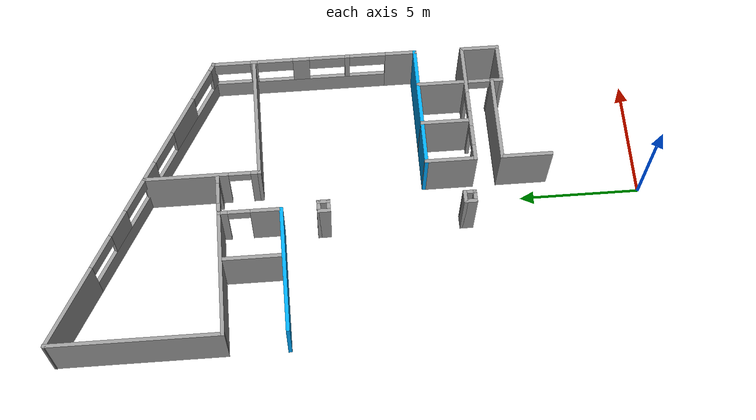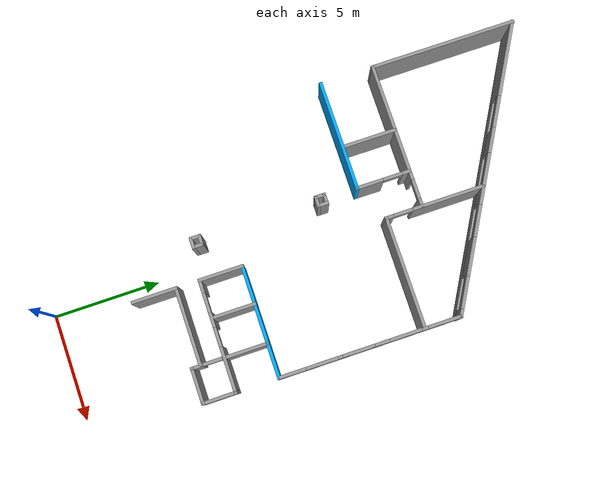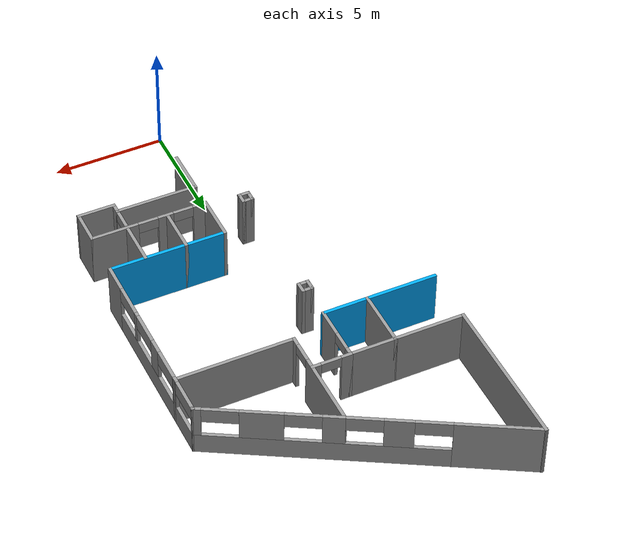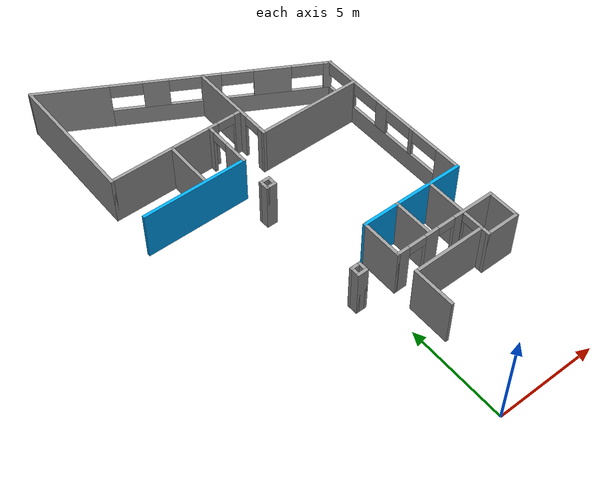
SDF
<sdf version="1.6">
 <model name="Building">
  <pose>0 4.66361 0 0 -0 0</pose>
  <link name="Wall_113">
   <collision name="Wall_113_Collision">
    <geometry><box><size>1.75 0.15 2.5</size></box></geometry>
    <pose>0 0 1.25 0 -0 0</pose>
   </collision>
   <visual name="Wall_113_Visual">
    <pose>0 0 1.25 0 -0 0</pose>
    <geometry><box><size>1.75 0.15 2.5</size></box></geometry>
    <material>
     <script><uri>file://media/materials/scripts/gazebo.material</uri><name>Gazebo/Grey</name></script>
     <ambient>1 1 1 1</ambient>
    </material>
    <meta><layer>0</layer></meta>
   </visual>
   <pose>5.2 0.836388 0 0 -0 3.14159</pose>
  </link>
  <link name="Wall_115">
   <pose>4.4 1.51139 0 0 -0 1.5708</pose>
   <visual name="Wall_115_Visual_0">
    <pose>-0.461821 0 1.25 0 -0 0</pose>
    <geometry><box><size>0.576358 0.15 2.5</size></box></geometry>
    <material>
     <script><uri>file://media/materials/scripts/gazebo.material</uri><name>Gazebo/Grey</name></script>
     <ambient>1 1 1 1</ambient>
    </material>
    <meta><layer>0</layer></meta>
   </visual>
   <collision name="Wall_115_Collision_0">
    <geometry><box><size>0.576358 0.15 2.5</size></box></geometry>
    <pose>-0.461821 0 1.25 0 -0 0</pose>
   </collision>
   <visual name="Wall_115_Visual_1">
    <pose>0.738179 0 1.25 0 -0 0</pose>
    <geometry><box><size>0.023642 0.15 2.5</size></box></geometry>
    <material>
     <script><uri>file://media/materials/scripts/gazebo.material</uri><name>Gazebo/Grey</name></script>
     <ambient>1 1 1 1</ambient>
    </material>
    <meta><layer>0</layer></meta>
   </visual>
   <collision name="Wall_115_Collision_1">
    <geometry><box><size>0.023642 0.15 2.5</size></box></geometry>
    <pose>0.738179 0 1.25 0 -0 0</pose>
   </collision>
   <visual name="Wall_115_Visual_2">
    <pose>0.276358 0 2.25 0 -0 0</pose>
    <geometry><box><size>0.9 0.15 0.5</size></box></geometry>
    <material>
     <script><uri>file://media/materials/scripts/gazebo.material</uri><name>Gazebo/Grey</name></script>
     <ambient>1 1 1 1</ambient>
    </material>
    <meta><layer>0</layer></meta>
   </visual>
   <collision name="Wall_115_Collision_2">
    <geometry><box><size>0.9 0.15 0.5</size></box></geometry>
    <pose>0.276358 0 2.25 0 -0 0</pose>
   </collision>
  </link>
  <link name="Wall_117">
   <collision name="Wall_117_Collision">
    <geometry><box><size>3.75 0.15 2.5</size></box></geometry>
    <pose>0 0 1.25 0 -0 0</pose>
   </collision>
   <visual name="Wall_117_Visual">
    <pose>0 0 1.25 0 -0 0</pose>
    <geometry><box><size>3.75 0.15 2.5</size></box></geometry>
    <material>
     <script><uri>file://media/materials/scripts/gazebo.material</uri><name>Gazebo/Grey</name></script>
     <ambient>1 1 1 1</ambient>
    </material>
    <meta><layer>0</layer></meta>
   </visual>
   <pose>2.6 1.23639 0 0 -0 0</pose>
  </link>
  <link name="Wall_12">
   <pose>0 16.2364 0 0 0 -0.515549</pose>
   <visual name="Wall_12_Visual_0">
    <pose>-5.14943 0 1.25 0 -0 0</pose>
    <geometry><box><size>3.6439 0.15 2.5</size></box></geometry>
    <material>
     <script><uri>file://media/materials/scripts/gazebo.material</uri><name>Gazebo/Grey</name></script>
     <ambient>1 1 1 1</ambient>
    </material>
    <meta><layer>0</layer></meta>
   </visual>
   <collision name="Wall_12_Collision_0">
    <geometry><box><size>3.6439 0.15 2.5</size></box></geometry>
    <pose>-5.14943 0 1.25 0 -0 0</pose>
   </collision>
   <visual name="Wall_12_Visual_1">
    <pose>1.82195 0 0.5 0 -0 0</pose>
    <geometry><box><size>10.2989 0.15 1</size></box></geometry>
    <material>
     <script><uri>file://media/materials/scripts/gazebo.material</uri><name>Gazebo/Grey</name></script>
     <ambient>1 1 1 1</ambient>
    </material>
    <meta><layer>0</layer></meta>
   </visual>
   <collision name="Wall_12_Collision_1">
    <geometry><box><size>10.2989 0.15 1</size></box></geometry>
    <pose>1.82195 0 0.5 0 -0 0</pose>
   </collision>
   <visual name="Wall_12_Visual_2">
    <pose>-1.22144 0 1.75 0 -0 0</pose>
    <geometry><box><size>1.21209 0.15 1.5</size></box></geometry>
    <material>
     <script><uri>file://media/materials/scripts/gazebo.material</uri><name>Gazebo/Grey</name></script>
     <ambient>1 1 1 1</ambient>
    </material>
    <meta><layer>0</layer></meta>
   </visual>
   <collision name="Wall_12_Collision_2">
    <geometry><box><size>1.21209 0.15 1.5</size></box></geometry>
    <pose>-1.22144 0 1.75 0 -0 0</pose>
   </collision>
   <visual name="Wall_12_Visual_3">
    <pose>1.33933 0 1.75 0 -0 0</pose>
    <geometry><box><size>0.909442 0.15 1.5</size></box></geometry>
    <material>
     <script><uri>file://media/materials/scripts/gazebo.material</uri><name>Gazebo/Grey</name></script>
     <ambient>1 1 1 1</ambient>
    </material>
    <meta><layer>0</layer></meta>
   </visual>
   <collision name="Wall_12_Collision_3">
    <geometry><box><size>0.909442 0.15 1.5</size></box></geometry>
    <pose>1.33933 0 1.75 0 -0 0</pose>
   </collision>
   <visual name="Wall_12_Visual_4">
    <pose>4.18293 0 1.75 0 -0 0</pose>
    <geometry><box><size>1.77777 0.15 1.5</size></box></geometry>
    <material>
     <script><uri>file://media/materials/scripts/gazebo.material</uri><name>Gazebo/Grey</name></script>
     <ambient>1 1 1 1</ambient>
    </material>
    <meta><layer>0</layer></meta>
   </visual>
   <collision name="Wall_12_Collision_4">
    <geometry><box><size>1.77777 0.15 1.5</size></box></geometry>
    <pose>4.18293 0 1.75 0 -0 0</pose>
   </collision>
   <visual name="Wall_12_Visual_5">
    <pose>6.7716 0 1.75 0 -0 0</pose>
    <geometry><box><size>0.399558 0.15 1.5</size></box></geometry>
    <material>
     <script><uri>file://media/materials/scripts/gazebo.material</uri><name>Gazebo/Grey</name></script>
     <ambient>1 1 1 1</ambient>
    </material>
    <meta><layer>0</layer></meta>
   </visual>
   <collision name="Wall_12_Collision_5">
    <geometry><box><size>0.399558 0.15 1.5</size></box></geometry>
    <pose>6.7716 0 1.75 0 -0 0</pose>
   </collision>
   <visual name="Wall_12_Visual_6">
    <pose>-2.57748 0 2.15 0 -0 0</pose>
    <geometry><box><size>1.5 0.15 0.7</size></box></geometry>
    <material>
     <script><uri>file://media/materials/scripts/gazebo.material</uri><name>Gazebo/Grey</name></script>
     <ambient>1 1 1 1</ambient>
    </material>
    <meta><layer>0</layer></meta>
   </visual>
   <collision name="Wall_12_Collision_6">
    <geometry><box><size>1.5 0.15 0.7</size></box></geometry>
    <pose>-2.57748 0 2.15 0 -0 0</pose>
   </collision>
   <visual name="Wall_12_Visual_7">
    <pose>0.134607 0 2.15 0 -0 0</pose>
    <geometry><box><size>1.5 0.15 0.7</size></box></geometry>
    <material>
     <script><uri>file://media/materials/scripts/gazebo.material</uri><name>Gazebo/Grey</name></script>
     <ambient>1 1 1 1</ambient>
    </material>
    <meta><layer>0</layer></meta>
   </visual>
   <collision name="Wall_12_Collision_7">
    <geometry><box><size>1.5 0.15 0.7</size></box></geometry>
    <pose>0.134607 0 2.15 0 -0 0</pose>
   </collision>
   <visual name="Wall_12_Visual_8">
    <pose>2.54405 0 2.15 0 -0 0</pose>
    <geometry><box><size>1.5 0.15 0.7</size></box></geometry>
    <material>
     <script><uri>file://media/materials/scripts/gazebo.material</uri><name>Gazebo/Grey</name></script>
     <ambient>1 1 1 1</ambient>
    </material>
    <meta><layer>0</layer></meta>
   </visual>
   <collision name="Wall_12_Collision_8">
    <geometry><box><size>1.5 0.15 0.7</size></box></geometry>
    <pose>2.54405 0 2.15 0 -0 0</pose>
   </collision>
   <visual name="Wall_12_Visual_9">
    <pose>5.82182 0 2.15 0 -0 0</pose>
    <geometry><box><size>1.5 0.15 0.7</size></box></geometry>
    <material>
     <script><uri>file://media/materials/scripts/gazebo.material</uri><name>Gazebo/Grey</name></script>
     <ambient>1 1 1 1</ambient>
    </material>
    <meta><layer>0</layer></meta>
   </visual>
   <collision name="Wall_12_Collision_9">
    <geometry><box><size>1.5 0.15 0.7</size></box></geometry>
    <pose>5.82182 0 2.15 0 -0 0</pose>
   </collision>
  </link>
  <link name="Wall_123">
   <collision name="Wall_123_Collision">
    <geometry><box><size>2 0.15 2.5</size></box></geometry>
    <pose>0 0 1.25 0 -0 0</pose>
   </collision>
   <visual name="Wall_123_Visual">
    <pose>0 0 1.25 0 -0 0</pose>
    <geometry><box><size>2 0.15 2.5</size></box></geometry>
    <material>
     <script><uri>file://media/materials/scripts/gazebo.material</uri><name>Gazebo/Grey</name></script>
     <ambient>1 1 1 1</ambient>
    </material>
    <meta><layer>0</layer></meta>
   </visual>
   <pose>4.40848 3.39488 0 0 -0 1.5708</pose>
  </link>
  <link name="Wall_126">
   <collision name="Wall_126_Collision">
    <geometry><box><size>2 0.15 2.5</size></box></geometry>
    <pose>0 0 1.25 0 -0 0</pose>
   </collision>
   <visual name="Wall_126_Visual">
    <pose>0 0 1.25 0 -0 0</pose>
    <geometry><box><size>2 0.15 2.5</size></box></geometry>
    <material>
     <script><uri>file://media/materials/scripts/gazebo.material</uri><name>Gazebo/Grey</name></script>
     <ambient>1 1 1 1</ambient>
    </material>
    <meta><layer>0</layer></meta>
   </visual>
   <pose>2.573 3.41139 0 0 0 -1.5708</pose>
  </link>
  <link name="Wall_18">
   <collision name="Wall_18_Collision">
    <geometry><box><size>2.15 0.15 2.5</size></box></geometry>
    <pose>0 0 1.25 0 -0 0</pose>
   </collision>
   <visual name="Wall_18_Visual">
    <pose>0 0 1.25 0 -0 0</pose>
    <geometry><box><size>2.15 0.15 2.5</size></box></geometry>
    <material>
     <script><uri>file://media/materials/scripts/gazebo.material</uri><name>Gazebo/Grey</name></script>
     <ambient>1 1 1 1</ambient>
    </material>
    <meta><layer>0</layer></meta>
   </visual>
   <pose>0.8 0.236388 0 0 -0 1.5708</pose>
  </link>
  <link name="Wall_20">
   <collision name="Wall_20_Collision">
    <geometry><box><size>5.35 0.15 2.5</size></box></geometry>
    <pose>0 0 1.25 0 -0 0</pose>
   </collision>
   <visual name="Wall_20_Visual">
    <pose>0 0 1.25 0 -0 0</pose>
    <geometry><box><size>5.35 0.15 2.5</size></box></geometry>
    <material>
     <script><uri>file://media/materials/scripts/gazebo.material</uri><name>Gazebo/Grey</name></script>
     <ambient>0 0.666667 1 1</ambient>
    </material>
    <meta><layer>0</layer></meta>
   </visual>
   <pose>3.4 4.33639 0 0 -0 0</pose>
  </link>
  <link name="Wall_22">
   <collision name="Wall_22_Collision">
    <geometry><box><size>2.15 0.15 2.5</size></box></geometry>
    <pose>0 0 1.25 0 -0 0</pose>
   </collision>
   <visual name="Wall_22_Visual">
    <pose>0 0 1.25 0 -0 0</pose>
    <geometry><box><size>2.15 0.15 2.5</size></box></geometry>
    <material>
     <script><uri>file://media/materials/scripts/gazebo.material</uri><name>Gazebo/Grey</name></script>
     <ambient>1 1 1 1</ambient>
    </material>
    <meta><layer>0</layer></meta>
   </visual>
   <pose>0.8 3.33639 0 0 0 -1.5708</pose>
  </link>
  <link name="Wall_24">
   <pose>3.4 2.33639 0 0 -0 0</pose>
   <visual name="Wall_24_Visual_0">
    <pose>-2.33821 0 1.25 0 -0 0</pose>
    <geometry><box><size>0.673574 0.15 2.5</size></box></geometry>
    <material>
     <script><uri>file://media/materials/scripts/gazebo.material</uri><name>Gazebo/Grey</name></script>
     <ambient>1 1 1 1</ambient>
    </material>
    <meta><layer>0</layer></meta>
   </visual>
   <collision name="Wall_24_Collision_0">
    <geometry><box><size>0.673574 0.15 2.5</size></box></geometry>
    <pose>-2.33821 0 1.25 0 -0 0</pose>
   </collision>
   <visual name="Wall_24_Visual_1">
    <pose>-0.749839 0 1.25 0 -0 0</pose>
    <geometry><box><size>0.703173 0.15 2.5</size></box></geometry>
    <material>
     <script><uri>file://media/materials/scripts/gazebo.material</uri><name>Gazebo/Grey</name></script>
     <ambient>1 1 1 1</ambient>
    </material>
    <meta><layer>0</layer></meta>
   </visual>
   <collision name="Wall_24_Collision_1">
    <geometry><box><size>0.703173 0.15 2.5</size></box></geometry>
    <pose>-0.749839 0 1.25 0 -0 0</pose>
   </collision>
   <visual name="Wall_24_Visual_2">
    <pose>1.58837 0 1.25 0 -0 0</pose>
    <geometry><box><size>2.17325 0.15 2.5</size></box></geometry>
    <material>
     <script><uri>file://media/materials/scripts/gazebo.material</uri><name>Gazebo/Grey</name></script>
     <ambient>1 1 1 1</ambient>
    </material>
    <meta><layer>0</layer></meta>
   </visual>
   <collision name="Wall_24_Collision_2">
    <geometry><box><size>2.17325 0.15 2.5</size></box></geometry>
    <pose>1.58837 0 1.25 0 -0 0</pose>
   </collision>
   <visual name="Wall_24_Visual_3">
    <pose>-1.55143 0 2.25 0 -0 0</pose>
    <geometry><box><size>0.9 0.15 0.5</size></box></geometry>
    <material>
     <script><uri>file://media/materials/scripts/gazebo.material</uri><name>Gazebo/Grey</name></script>
     <ambient>1 1 1 1</ambient>
    </material>
    <meta><layer>0</layer></meta>
   </visual>
   <collision name="Wall_24_Collision_3">
    <geometry><box><size>0.9 0.15 0.5</size></box></geometry>
    <pose>-1.55143 0 2.25 0 -0 0</pose>
   </collision>
   <visual name="Wall_24_Visual_4">
    <pose>0.051747 0 2.25 0 -0 0</pose>
    <geometry><box><size>0.9 0.15 0.5</size></box></geometry>
    <material>
     <script><uri>file://media/materials/scripts/gazebo.material</uri><name>Gazebo/Grey</name></script>
     <ambient>1 1 1 1</ambient>
    </material>
    <meta><layer>0</layer></meta>
   </visual>
   <collision name="Wall_24_Collision_4">
    <geometry><box><size>0.9 0.15 0.5</size></box></geometry>
    <pose>0.051747 0 2.25 0 -0 0</pose>
   </collision>
  </link>
  <link name="Wall_26">
   <collision name="Wall_26_Collision">
    <geometry><box><size>1.65 0.15 2.5</size></box></geometry>
    <pose>0 0 1.25 0 -0 0</pose>
   </collision>
   <visual name="Wall_26_Visual">
    <pose>0 0 1.25 0 -0 0</pose>
    <geometry><box><size>1.65 0.15 2.5</size></box></geometry>
    <material>
     <script><uri>file://media/materials/scripts/gazebo.material</uri><name>Gazebo/Grey</name></script>
     <ambient>1 1 1 1</ambient>
    </material>
    <meta><layer>0</layer></meta>
   </visual>
   <pose>6 1.58639 0 0 0 -1.5708</pose>
  </link>
  <link name="Wall_34">
   <pose>6 8.58639 0 0 -0 1.5708</pose>
   <visual name="Wall_34_Visual_0">
    <pose>-3.66132 0 1.25 0 -0 0</pose>
    <geometry><box><size>1.32735 0.15 2.5</size></box></geometry>
    <material>
     <script><uri>file://media/materials/scripts/gazebo.material</uri><name>Gazebo/Grey</name></script>
     <ambient>1 1 1 1</ambient>
    </material>
    <meta><layer>0</layer></meta>
   </visual>
   <collision name="Wall_34_Collision_0">
    <geometry><box><size>1.32735 0.15 2.5</size></box></geometry>
    <pose>-3.66132 0 1.25 0 -0 0</pose>
   </collision>
   <visual name="Wall_34_Visual_1">
    <pose>0.663676 0 0.5 0 -0 0</pose>
    <geometry><box><size>7.32265 0.15 1</size></box></geometry>
    <material>
     <script><uri>file://media/materials/scripts/gazebo.material</uri><name>Gazebo/Grey</name></script>
     <ambient>1 1 1 1</ambient>
    </material>
    <meta><layer>0</layer></meta>
   </visual>
   <collision name="Wall_34_Collision_1">
    <geometry><box><size>7.32265 0.15 1</size></box></geometry>
    <pose>0.663676 0 0.5 0 -0 0</pose>
   </collision>
   <visual name="Wall_34_Visual_2">
    <pose>-1.39381 0 1.75 0 -0 0</pose>
    <geometry><box><size>0.207676 0.15 1.5</size></box></geometry>
    <material>
     <script><uri>file://media/materials/scripts/gazebo.material</uri><name>Gazebo/Grey</name></script>
     <ambient>1 1 1 1</ambient>
    </material>
    <meta><layer>0</layer></meta>
   </visual>
   <collision name="Wall_34_Collision_2">
    <geometry><box><size>0.207676 0.15 1.5</size></box></geometry>
    <pose>-1.39381 0 1.75 0 -0 0</pose>
   </collision>
   <visual name="Wall_34_Visual_3">
    <pose>0.560271 0 1.75 0 -0 0</pose>
    <geometry><box><size>0.700485 0.15 1.5</size></box></geometry>
    <material>
     <script><uri>file://media/materials/scripts/gazebo.material</uri><name>Gazebo/Grey</name></script>
     <ambient>1 1 1 1</ambient>
    </material>
    <meta><layer>0</layer></meta>
   </visual>
   <collision name="Wall_34_Collision_3">
    <geometry><box><size>0.700485 0.15 1.5</size></box></geometry>
    <pose>0.560271 0 1.75 0 -0 0</pose>
   </collision>
   <visual name="Wall_34_Visual_4">
    <pose>2.56093 0 1.75 0 -0 0</pose>
    <geometry><box><size>0.300838 0.15 1.5</size></box></geometry>
    <material>
     <script><uri>file://media/materials/scripts/gazebo.material</uri><name>Gazebo/Grey</name></script>
     <ambient>1 1 1 1</ambient>
    </material>
    <meta><layer>0</layer></meta>
   </visual>
   <collision name="Wall_34_Collision_4">
    <geometry><box><size>0.300838 0.15 1.5</size></box></geometry>
    <pose>2.56093 0 1.75 0 -0 0</pose>
   </collision>
   <visual name="Wall_34_Visual_5">
    <pose>4.26818 0 1.75 0 -0 0</pose>
    <geometry><box><size>0.113649 0.15 1.5</size></box></geometry>
    <material>
     <script><uri>file://media/materials/scripts/gazebo.material</uri><name>Gazebo/Grey</name></script>
     <ambient>1 1 1 1</ambient>
    </material>
    <meta><layer>0</layer></meta>
   </visual>
   <collision name="Wall_34_Collision_5">
    <geometry><box><size>0.113649 0.15 1.5</size></box></geometry>
    <pose>4.26818 0 1.75 0 -0 0</pose>
   </collision>
   <visual name="Wall_34_Visual_6">
    <pose>-2.24765 0 2.15 0 -0 0</pose>
    <geometry><box><size>1.5 0.15 0.7</size></box></geometry>
    <material>
     <script><uri>file://media/materials/scripts/gazebo.material</uri><name>Gazebo/Grey</name></script>
     <ambient>1 1 1 1</ambient>
    </material>
    <meta><layer>0</layer></meta>
   </visual>
   <collision name="Wall_34_Collision_6">
    <geometry><box><size>1.5 0.15 0.7</size></box></geometry>
    <pose>-2.24765 0 2.15 0 -0 0</pose>
   </collision>
   <visual name="Wall_34_Visual_7">
    <pose>-0.539971 0 2.15 0 -0 0</pose>
    <geometry><box><size>1.5 0.15 0.7</size></box></geometry>
    <material>
     <script><uri>file://media/materials/scripts/gazebo.material</uri><name>Gazebo/Grey</name></script>
     <ambient>1 1 1 1</ambient>
    </material>
    <meta><layer>0</layer></meta>
   </visual>
   <collision name="Wall_34_Collision_7">
    <geometry><box><size>1.5 0.15 0.7</size></box></geometry>
    <pose>-0.539971 0 2.15 0 -0 0</pose>
   </collision>
   <visual name="Wall_34_Visual_8">
    <pose>1.66051 0 2.15 0 -0 0</pose>
    <geometry><box><size>1.5 0.15 0.7</size></box></geometry>
    <material>
     <script><uri>file://media/materials/scripts/gazebo.material</uri><name>Gazebo/Grey</name></script>
     <ambient>1 1 1 1</ambient>
    </material>
    <meta><layer>0</layer></meta>
   </visual>
   <collision name="Wall_34_Collision_8">
    <geometry><box><size>1.5 0.15 0.7</size></box></geometry>
    <pose>1.66051 0 2.15 0 -0 0</pose>
   </collision>
   <visual name="Wall_34_Visual_9">
    <pose>3.46135 0 2.15 0 -0 0</pose>
    <geometry><box><size>1.5 0.15 0.7</size></box></geometry>
    <material>
     <script><uri>file://media/materials/scripts/gazebo.material</uri><name>Gazebo/Grey</name></script>
     <ambient>1 1 1 1</ambient>
    </material>
    <meta><layer>0</layer></meta>
   </visual>
   <collision name="Wall_34_Collision_9">
    <geometry><box><size>1.5 0.15 0.7</size></box></geometry>
    <pose>3.46135 0 2.15 0 -0 0</pose>
   </collision>
  </link>
  <link name="Wall_36">
   <collision name="Wall_36_Collision">
    <geometry><box><size>5.35 0.15 2.5</size></box></geometry>
    <pose>0 0 1.25 0 -0 0</pose>
   </collision>
   <visual name="Wall_36_Visual">
    <pose>0 0 1.25 0 -0 0</pose>
    <geometry><box><size>5.35 0.15 2.5</size></box></geometry>
    <material>
     <script><uri>file://media/materials/scripts/gazebo.material</uri><name>Gazebo/Grey</name></script>
     <ambient>1 1 1 1</ambient>
    </material>
    <meta><layer>0</layer></meta>
   </visual>
   <pose>3.4 11.1364 0 0 -0 3.14159</pose>
  </link>
  <link name="Wall_38">
   <pose>0.8 13.4364 0 0 -0 1.5708</pose>
   <visual name="Wall_38_Visual_0">
    <pose>-2.16251 0 1.25 0 -0 0</pose>
    <geometry><box><size>0.424975 0.15 2.5</size></box></geometry>
    <material>
     <script><uri>file://media/materials/scripts/gazebo.material</uri><name>Gazebo/Grey</name></script>
     <ambient>1 1 1 1</ambient>
    </material>
    <meta><layer>0</layer></meta>
   </visual>
   <collision name="Wall_38_Collision_0">
    <geometry><box><size>0.424975 0.15 2.5</size></box></geometry>
    <pose>-2.16251 0 1.25 0 -0 0</pose>
   </collision>
   <visual name="Wall_38_Visual_1">
    <pose>0.662488 0 1.25 0 -0 0</pose>
    <geometry><box><size>3.42503 0.15 2.5</size></box></geometry>
    <material>
     <script><uri>file://media/materials/scripts/gazebo.material</uri><name>Gazebo/Grey</name></script>
     <ambient>1 1 1 1</ambient>
    </material>
    <meta><layer>0</layer></meta>
   </visual>
   <collision name="Wall_38_Collision_1">
    <geometry><box><size>3.42503 0.15 2.5</size></box></geometry>
    <pose>0.662488 0 1.25 0 -0 0</pose>
   </collision>
   <visual name="Wall_38_Visual_2">
    <pose>-1.50002 0 2.25 0 -0 0</pose>
    <geometry><box><size>0.9 0.15 0.5</size></box></geometry>
    <material>
     <script><uri>file://media/materials/scripts/gazebo.material</uri><name>Gazebo/Grey</name></script>
     <ambient>1 1 1 1</ambient>
    </material>
    <meta><layer>0</layer></meta>
   </visual>
   <collision name="Wall_38_Collision_2">
    <geometry><box><size>0.9 0.15 0.5</size></box></geometry>
    <pose>-1.50002 0 2.25 0 -0 0</pose>
   </collision>
  </link>
  <link name="Wall_40">
   <collision name="Wall_40_Collision">
    <geometry><box><size>6.95 0.15 2.5</size></box></geometry>
    <pose>0 0 1.25 0 -0 0</pose>
   </collision>
   <visual name="Wall_40_Visual">
    <pose>0 0 1.25 0 -0 0</pose>
    <geometry><box><size>6.95 0.15 2.5</size></box></geometry>
    <material>
     <script><uri>file://media/materials/scripts/gazebo.material</uri><name>Gazebo/Grey</name></script>
     <ambient>1 1 1 1</ambient>
    </material>
    <meta><layer>0</layer></meta>
   </visual>
   <pose>-6 16.2364 0 0 0 -1.5708</pose>
  </link>
  <link name="Wall_42">
   <collision name="Wall_42_Collision">
    <geometry><box><size>5.25 0.15 2.5</size></box></geometry>
    <pose>0 0 1.25 0 -0 0</pose>
   </collision>
   <visual name="Wall_42_Visual">
    <pose>0 0 1.25 0 -0 0</pose>
    <geometry><box><size>5.25 0.15 2.5</size></box></geometry>
    <material>
     <script><uri>file://media/materials/scripts/gazebo.material</uri><name>Gazebo/Grey</name></script>
     <ambient>1 1 1 1</ambient>
    </material>
    <meta><layer>0</layer></meta>
   </visual>
   <pose>-3.45 12.8364 0 0 -0 0</pose>
  </link>
  <link name="Wall_44">
   <pose>-0.05 12.8364 0 0 -0 0</pose>
   <visual name="Wall_44_Visual_0">
    <pose>-0.676746 0 1.25 0 -0 0</pose>
    <geometry><box><size>0.496509 0.15 2.5</size></box></geometry>
    <material>
     <script><uri>file://media/materials/scripts/gazebo.material</uri><name>Gazebo/Grey</name></script>
     <ambient>1 1 1 1</ambient>
    </material>
    <meta><layer>0</layer></meta>
   </visual>
   <collision name="Wall_44_Collision_0">
    <geometry><box><size>0.496509 0.15 2.5</size></box></geometry>
    <pose>-0.676746 0 1.25 0 -0 0</pose>
   </collision>
   <visual name="Wall_44_Visual_1">
    <pose>0.698254 0 1.25 0 -0 0</pose>
    <geometry><box><size>0.453491 0.15 2.5</size></box></geometry>
    <material>
     <script><uri>file://media/materials/scripts/gazebo.material</uri><name>Gazebo/Grey</name></script>
     <ambient>1 1 1 1</ambient>
    </material>
    <meta><layer>0</layer></meta>
   </visual>
   <collision name="Wall_44_Collision_1">
    <geometry><box><size>0.453491 0.15 2.5</size></box></geometry>
    <pose>0.698254 0 1.25 0 -0 0</pose>
   </collision>
   <visual name="Wall_44_Visual_2">
    <pose>0.021509 0 2.25 0 -0 0</pose>
    <geometry><box><size>0.9 0.15 0.5</size></box></geometry>
    <material>
     <script><uri>file://media/materials/scripts/gazebo.material</uri><name>Gazebo/Grey</name></script>
     <ambient>1 1 1 1</ambient>
    </material>
    <meta><layer>0</layer></meta>
   </visual>
   <collision name="Wall_44_Collision_2">
    <geometry><box><size>0.9 0.15 0.5</size></box></geometry>
    <pose>0.021509 0 2.25 0 -0 0</pose>
   </collision>
  </link>
  <link name="Wall_47">
   <pose>-0.9 11.5864 0 0 0 -1.5708</pose>
   <visual name="Wall_47_Visual_0">
    <pose>-1.10875 0 1.25 0 -0 0</pose>
    <geometry><box><size>0.432501 0.15 2.5</size></box></geometry>
    <material>
     <script><uri>file://media/materials/scripts/gazebo.material</uri><name>Gazebo/Grey</name></script>
     <ambient>1 1 1 1</ambient>
    </material>
    <meta><layer>0</layer></meta>
   </visual>
   <collision name="Wall_47_Collision_0">
    <geometry><box><size>0.432501 0.15 2.5</size></box></geometry>
    <pose>-1.10875 0 1.25 0 -0 0</pose>
   </collision>
   <visual name="Wall_47_Visual_1">
    <pose>0.66625 0 1.25 0 -0 0</pose>
    <geometry><box><size>1.3175 0.15 2.5</size></box></geometry>
    <material>
     <script><uri>file://media/materials/scripts/gazebo.material</uri><name>Gazebo/Grey</name></script>
     <ambient>1 1 1 1</ambient>
    </material>
    <meta><layer>0</layer></meta>
   </visual>
   <collision name="Wall_47_Collision_1">
    <geometry><box><size>1.3175 0.15 2.5</size></box></geometry>
    <pose>0.66625 0 1.25 0 -0 0</pose>
   </collision>
   <visual name="Wall_47_Visual_2">
    <pose>-0.442499 0 2.25 0 -0 0</pose>
    <geometry><box><size>0.9 0.15 0.5</size></box></geometry>
    <material>
     <script><uri>file://media/materials/scripts/gazebo.material</uri><name>Gazebo/Grey</name></script>
     <ambient>1 1 1 1</ambient>
    </material>
    <meta><layer>0</layer></meta>
   </visual>
   <collision name="Wall_47_Collision_2">
    <geometry><box><size>0.9 0.15 0.5</size></box></geometry>
    <pose>-0.442499 0 2.25 0 -0 0</pose>
   </collision>
  </link>
  <link name="Wall_49">
   <collision name="Wall_49_Collision">
    <geometry><box><size>5.25 0.15 2.5</size></box></geometry>
    <pose>0 0 1.25 0 -0 0</pose>
   </collision>
   <visual name="Wall_49_Visual">
    <pose>0 0 1.25 0 -0 0</pose>
    <geometry><box><size>5.25 0.15 2.5</size></box></geometry>
    <material>
     <script><uri>file://media/materials/scripts/gazebo.material</uri><name>Gazebo/Grey</name></script>
     <ambient>0 0.666667 1 1</ambient>
    </material>
    <meta><layer>0</layer></meta>
   </visual>
   <pose>-3.45 10.3364 0 0 -0 3.14159</pose>
  </link>
  <link name="Wall_61">
   <collision name="Wall_61_Collision">
    <geometry><box><size>2.65 0.15 2.5</size></box></geometry>
    <pose>0 0 1.25 0 -0 0</pose>
   </collision>
   <visual name="Wall_61_Visual">
    <pose>0 0 1.25 0 -0 0</pose>
    <geometry><box><size>2.65 0.15 2.5</size></box></geometry>
    <material>
     <script><uri>file://media/materials/scripts/gazebo.material</uri><name>Gazebo/Grey</name></script>
     <ambient>1 1 1 1</ambient>
    </material>
    <meta><layer>0</layer></meta>
   </visual>
   <pose>-2.9 11.5864 0 0 0 -1.5708</pose>
  </link>
  <link name="Wall_63">
   <collision name="Wall_63_Collision">
    <geometry><box><size>0.55 0.15 2.5</size></box></geometry>
    <pose>0 0 1.25 0 -0 0</pose>
   </collision>
   <visual name="Wall_63_Visual">
    <pose>0 0 1.25 0 -0 0</pose>
    <geometry><box><size>0.55 0.15 2.5</size></box></geometry>
    <material>
     <script><uri>file://media/materials/scripts/gazebo.material</uri><name>Gazebo/Grey</name></script>
     <ambient>1 1 1 1</ambient>
    </material>
    <meta><layer>0</layer></meta>
   </visual>
   <pose>-0.9 8.83639 0 0 -0 3.14159</pose>
  </link>
  <link name="Wall_65">
   <collision name="Wall_65_Collision">
    <geometry><box><size>0.55 0.15 2.5</size></box></geometry>
    <pose>0 0 1.25 0 -0 0</pose>
   </collision>
   <visual name="Wall_65_Visual">
    <pose>0 0 1.25 0 -0 0</pose>
    <geometry><box><size>0.55 0.15 2.5</size></box></geometry>
    <material>
     <script><uri>file://media/materials/scripts/gazebo.material</uri><name>Gazebo/Grey</name></script>
     <ambient>1 1 1 1</ambient>
    </material>
    <meta><layer>0</layer></meta>
   </visual>
   <pose>-1.1 8.63639 0 0 0 -1.5708</pose>
  </link>
  <link name="Wall_67">
   <collision name="Wall_67_Collision">
    <geometry><box><size>0.55 0.15 2.5</size></box></geometry>
    <pose>0 0 1.25 0 -0 0</pose>
   </collision>
   <visual name="Wall_67_Visual">
    <pose>0 0 1.25 0 -0 0</pose>
    <geometry><box><size>0.55 0.15 2.5</size></box></geometry>
    <material>
     <script><uri>file://media/materials/scripts/gazebo.material</uri><name>Gazebo/Grey</name></script>
     <ambient>1 1 1 1</ambient>
    </material>
    <meta><layer>0</layer></meta>
   </visual>
   <pose>-0.9 8.43639 0 0 -0 0</pose>
  </link>
  <link name="Wall_69">
   <collision name="Wall_69_Collision">
    <geometry><box><size>0.55 0.15 2.5</size></box></geometry>
    <pose>0 0 1.25 0 -0 0</pose>
   </collision>
   <visual name="Wall_69_Visual">
    <pose>0 0 1.25 0 -0 0</pose>
    <geometry><box><size>0.55 0.15 2.5</size></box></geometry>
    <material>
     <script><uri>file://media/materials/scripts/gazebo.material</uri><name>Gazebo/Grey</name></script>
     <ambient>1 1 1 1</ambient>
    </material>
    <meta><layer>0</layer></meta>
   </visual>
   <pose>-0.7 8.63639 0 0 0 -1.5708</pose>
  </link>
  <link name="Wall_71">
   <collision name="Wall_71_Collision">
    <geometry><box><size>0.55 0.15 2.5</size></box></geometry>
    <pose>0 0 1.25 0 -0 0</pose>
   </collision>
   <visual name="Wall_71_Visual">
    <pose>0 0 1.25 0 -0 0</pose>
    <geometry><box><size>0.55 0.15 2.5</size></box></geometry>
    <material>
     <script><uri>file://media/materials/scripts/gazebo.material</uri><name>Gazebo/Grey</name></script>
     <ambient>1 1 1 1</ambient>
    </material>
    <meta><layer>0</layer></meta>
   </visual>
   <pose>-0.9 2.53639 0 0 -0 0</pose>
  </link>
  <link name="Wall_73">
   <collision name="Wall_73_Collision">
    <geometry><box><size>0.55 0.15 2.5</size></box></geometry>
    <pose>0 0 1.25 0 -0 0</pose>
   </collision>
   <visual name="Wall_73_Visual">
    <pose>0 0 1.25 0 -0 0</pose>
    <geometry><box><size>0.55 0.15 2.5</size></box></geometry>
    <material>
     <script><uri>file://media/materials/scripts/gazebo.material</uri><name>Gazebo/Grey</name></script>
     <ambient>1 1 1 1</ambient>
    </material>
    <meta><layer>0</layer></meta>
   </visual>
   <pose>-0.9 2.93639 0 0 -0 0</pose>
  </link>
  <link name="Wall_75">
   <collision name="Wall_75_Collision">
    <geometry><box><size>0.55 0.15 2.5</size></box></geometry>
    <pose>0 0 1.25 0 -0 0</pose>
   </collision>
   <visual name="Wall_75_Visual">
    <pose>0 0 1.25 0 -0 0</pose>
    <geometry><box><size>0.55 0.15 2.5</size></box></geometry>
    <material>
     <script><uri>file://media/materials/scripts/gazebo.material</uri><name>Gazebo/Grey</name></script>
     <ambient>1 1 1 1</ambient>
    </material>
    <meta><layer>0</layer></meta>
   </visual>
   <pose>-1.1 2.73639 0 0 0 -1.5708</pose>
  </link>
  <link name="Wall_78">
   <collision name="Wall_78_Collision">
    <geometry><box><size>0.55 0.15 2.5</size></box></geometry>
    <pose>0 0 1.25 0 -0 0</pose>
   </collision>
   <visual name="Wall_78_Visual">
    <pose>0 0 1.25 0 -0 0</pose>
    <geometry><box><size>0.55 0.15 2.5</size></box></geometry>
    <material>
     <script><uri>file://media/materials/scripts/gazebo.material</uri><name>Gazebo/Grey</name></script>
     <ambient>1 1 1 1</ambient>
    </material>
    <meta><layer>0</layer></meta>
   </visual>
   <pose>-0.7 2.73639 0 0 0 -1.5708</pose>
  </link>
  <static>1</static>
 </model>
</sdf>
